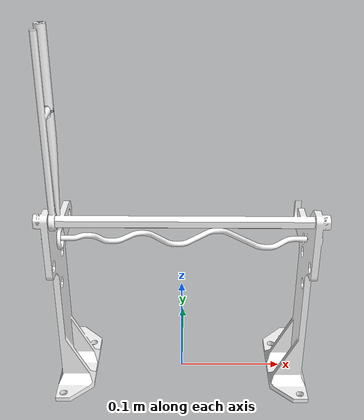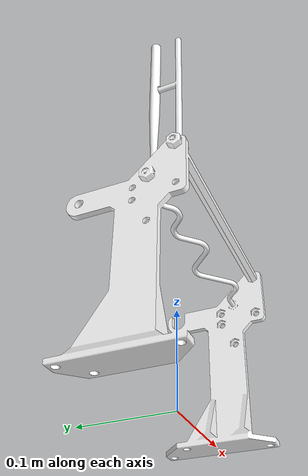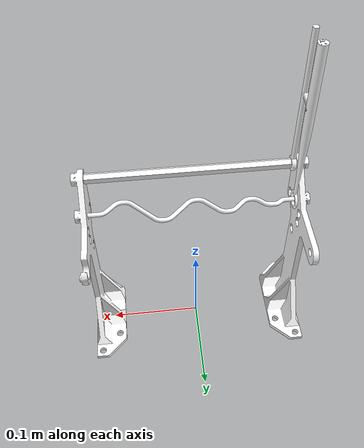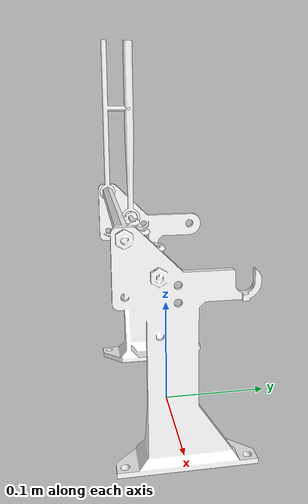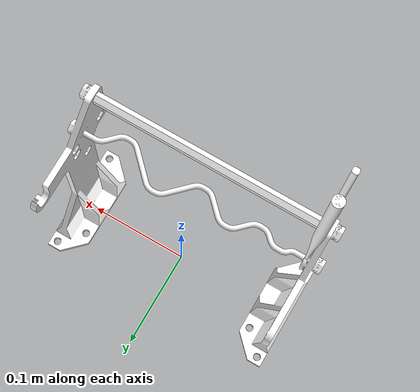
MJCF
<mujoco model="H2_Chopsticks">

  <asset>
    <mesh name="i12_horizontal_base" file="i12_horizontal_base.stl" scale="1 1 1"/>
    <mesh name="i12_holder1_collision" file="i12_holder1_collision.stl" scale="1 1 1"/>
    <mesh name="i12_holder2_collision" file="i12_holder2_collision.stl" scale="1 1 1"/>

    <mesh name="i12_traj_part_0" file="i12_traj/part_0.obj" scale="1 1 1"/>
    <mesh name="i12_traj_part_1" file="i12_traj/part_1.obj" scale="1 1 1"/>
    <mesh name="i12_traj_part_2" file="i12_traj/part_2.obj" scale="1 1 1"/>
    <mesh name="i12_traj_part_3" file="i12_traj/part_3.obj" scale="1 1 1"/>
    <mesh name="i12_traj_part_4" file="i12_traj/part_4.obj" scale="1 1 1"/>
    <mesh name="i12_traj_part_5" file="i12_traj/part_5.obj" scale="1 1 1"/>
    <mesh name="i12_traj_part_6" file="i12_traj/part_6.obj" scale="1 1 1"/>
    <mesh name="i12_traj_part_7" file="i12_traj/part_7.obj" scale="1 1 1"/>
    <mesh name="i12_traj_part_8" file="i12_traj/part_8.obj" scale="1 1 1"/>
    <mesh name="i12_traj_part_9" file="i12_traj/part_9.obj" scale="1 1 1"/>
    <mesh name="i12_traj_part_10" file="i12_traj/part_10.obj" scale="1 1 1"/>
    <mesh name="i12_traj_part_11" file="i12_traj/part_11.obj" scale="1 1 1"/>
    <mesh name="i12_traj_part_12" file="i12_traj/part_12.obj" scale="1 1 1"/>
    <mesh name="i12_traj_part_13" file="i12_traj/part_13.obj" scale="1 1 1"/>
    <mesh name="i12_traj_part_14" file="i12_traj/part_14.obj" scale="1 1 1"/>
    <mesh name="i12_traj_part_15" file="i12_traj/part_15.obj" scale="1 1 1"/>
    <mesh name="i12_traj_part_16" file="i12_traj/part_16.obj" scale="1 1 1"/>
    <mesh name="i12_traj_part_17" file="i12_traj/part_17.obj" scale="1 1 1"/>
    <mesh name="i12_traj_part_18" file="i12_traj/part_18.obj" scale="1 1 1"/>

    <mesh name="i12_stationary_chopstick_visual" file="i12_stationary_chopstick_visual.stl" scale="1 1 1"/>
    <mesh name="i12_stationary_chopstick_collision" file="i12_stationary_chopstick_collision.stl" scale="1 1 1"/>
    <mesh name="i12_dynamic_chopstick_visual" file="i12_dynamic_chopstick_visual.stl" scale="1 1 1"/>
    <mesh name="i12_dynamic_chopstick_collision" file="i12_dynamic_chopstick_collision.stl" scale="1 1 1"/>

    <mesh name="i12_ring_part_0" file="i12_ring/part_0.obj" scale="1 1 1"/>
    <mesh name="i12_ring_part_1" file="i12_ring/part_1.obj" scale="1 1 1"/>
    <mesh name="i12_ring_part_2" file="i12_ring/part_2.obj" scale="1 1 1"/>
    <mesh name="i12_ring_part_3" file="i12_ring/part_3.obj" scale="1 1 1"/>
    <mesh name="i12_ring_part_4" file="i12_ring/part_4.obj" scale="1 1 1"/>
    <mesh name="i12_ring_part_5" file="i12_ring/part_5.obj" scale="1 1 1"/>
    <mesh name="i12_ring_part_6" file="i12_ring/part_6.obj" scale="1 1 1"/>
    <mesh name="i12_ring_part_7" file="i12_ring/part_7.obj" scale="1 1 1"/>
    <mesh name="i12_ring_part_8" file="i12_ring/part_8.obj" scale="1 1 1"/>
    <mesh name="i12_ring_part_9" file="i12_ring/part_9.obj" scale="1 1 1"/>
    <mesh name="i12_ring_part_10" file="i12_ring/part_10.obj" scale="1 1 1"/>
    <mesh name="i12_ring_part_11" file="i12_ring/part_11.obj" scale="1 1 1"/>
    <mesh name="i12_ring_part_12" file="i12_ring/part_12.obj" scale="1 1 1"/>
    <mesh name="i12_ring_part_13" file="i12_ring/part_13.obj" scale="1 1 1"/>
    <mesh name="i12_ring_part_14" file="i12_ring/part_14.obj" scale="1 1 1"/>
    <mesh name="i12_ring_part_15" file="i12_ring/part_15.obj" scale="1 1 1"/>
    <mesh name="i12_ring_part_16" file="i12_ring/part_16.obj" scale="1 1 1"/>

    <material name="object_material" rgba="1 1 1 1" shininess="0.3"/>
  </asset>

  <default>
    <default class="visual">
      <geom contype="0" conaffinity="0" group="2"/>
    </default>
    <default class="collision">
      <geom group="3"/>
    </default>
  </default>

  <worldbody>
    <body name="i12_horizontal_base_body" pos="0 0 0">
      <geom name="i12_horizontal_base" type="mesh" mesh="i12_horizontal_base" material="object_material" mass="1" class="visual"/>
      <geom name="i12_holder1_collision" type="mesh" mesh="i12_holder1_collision" class="collision"/>
      <geom name="i12_holder2_collision" type="mesh" mesh="i12_holder2_collision" class="collision"/>

      <geom name="i12_traj_part_0" type="mesh" mesh="i12_traj_part_0" class="collision" solref="0.002 1" friction="1 0.1 0.1"/>
      <geom name="i12_traj_part_1" type="mesh" mesh="i12_traj_part_1" class="collision" solref="0.002 1" friction="1 0.1 0.1"/>
      <geom name="i12_traj_part_2" type="mesh" mesh="i12_traj_part_2" class="collision" solref="0.002 1" friction="1 0.1 0.1"/>
      <geom name="i12_traj_part_3" type="mesh" mesh="i12_traj_part_3" class="collision" solref="0.002 1" friction="1 0.1 0.1"/>
      <geom name="i12_traj_part_4" type="mesh" mesh="i12_traj_part_4" class="collision" solref="0.002 1" friction="1 0.1 0.1"/>
      <geom name="i12_traj_part_5" type="mesh" mesh="i12_traj_part_5" class="collision" solref="0.002 1" friction="1 0.1 0.1"/>
      <geom name="i12_traj_part_6" type="mesh" mesh="i12_traj_part_6" class="collision" solref="0.002 1" friction="1 0.1 0.1"/>
      <geom name="i12_traj_part_7" type="mesh" mesh="i12_traj_part_7" class="collision" solref="0.002 1" friction="1 0.1 0.1"/>
      <geom name="i12_traj_part_8" type="mesh" mesh="i12_traj_part_8" class="collision" solref="0.002 1" friction="1 0.1 0.1"/>
      <geom name="i12_traj_part_9" type="mesh" mesh="i12_traj_part_9" class="collision" solref="0.002 1" friction="1 0.1 0.1"/>
      <geom name="i12_traj_part_10" type="mesh" mesh="i12_traj_part_10" class="collision" solref="0.002 1" friction="1 0.1 0.1"/>
      <geom name="i12_traj_part_11" type="mesh" mesh="i12_traj_part_11" class="collision" solref="0.002 1" friction="1 0.1 0.1"/>
      <geom name="i12_traj_part_12" type="mesh" mesh="i12_traj_part_12" class="collision" solref="0.002 1" friction="1 0.1 0.1"/>
      <geom name="i12_traj_part_13" type="mesh" mesh="i12_traj_part_13" class="collision" solref="0.002 1" friction="1 0.1 0.1"/>
      <geom name="i12_traj_part_14" type="mesh" mesh="i12_traj_part_14" class="collision" solref="0.002 1" friction="1 0.1 0.1"/>
      <geom name="i12_traj_part_15" type="mesh" mesh="i12_traj_part_15" class="collision" solref="0.002 1" friction="1 0.1 0.1"/>
      <geom name="i12_traj_part_16" type="mesh" mesh="i12_traj_part_16" class="collision" solref="0.002 1" friction="1 0.1 0.1"/>
      <geom name="i12_traj_part_17" type="mesh" mesh="i12_traj_part_17" class="collision" solref="0.002 1" friction="1 0.1 0.1"/>
      <geom name="i12_traj_part_18" type="mesh" mesh="i12_traj_part_18" class="collision" solref="0.002 1" friction="1 0.1 0.1"/>
    </body>

    <body name="stationary_chopstick_body" pos="0 0 0">
      <joint name="stationary_chopstick_slide" type="slide" axis="1 0 0" range="0 0.2195" damping="0.05"/>
      <geom name="i12_stationary_chopstick_visual" type="mesh" mesh="i12_stationary_chopstick_visual" material="object_material" class="visual"/>
      <geom name="i12_stationary_chopstick_collision" type="mesh" mesh="i12_stationary_chopstick_collision" density="248" class="collision"/>
      <body name="dynamic_chopstick" pos="0 0 0">
        <joint name="dynamic_chopstick_hinge" type="hinge" pos="-0.10975 -0.0228 0.283" axis="1 0 0" range="-0.4363 0.4363" damping="0.05"/>
        <geom name="i12_dynamic_chopstick_visual" type="mesh" mesh="i12_dynamic_chopstick_visual" material="object_material" class="visual"/>
        <geom name="i12_dynamic_chopstick_collision" type="mesh" mesh="i12_dynamic_chopstick_collision" density="248" class="collision"/>

        <geom name="i12_ring_part_0" type="mesh" mesh="i12_ring_part_0" density="248" class="collision" friction="1 0.1 0.1"/>
        <geom name="i12_ring_part_1" type="mesh" mesh="i12_ring_part_1" density="248" class="collision" friction="1 0.1 0.1"/>
        <geom name="i12_ring_part_2" type="mesh" mesh="i12_ring_part_2" density="248" class="collision" friction="1 0.1 0.1"/>
        <geom name="i12_ring_part_3" type="mesh" mesh="i12_ring_part_3" density="248" class="collision" friction="1 0.1 0.1"/>
        <geom name="i12_ring_part_4" type="mesh" mesh="i12_ring_part_4" density="248" class="collision" friction="1 0.1 0.1"/>
        <geom name="i12_ring_part_5" type="mesh" mesh="i12_ring_part_5" density="248" class="collision" friction="1 0.1 0.1"/>
        <geom name="i12_ring_part_6" type="mesh" mesh="i12_ring_part_6" density="248" class="collision" friction="1 0.1 0.1"/>
        <geom name="i12_ring_part_7" type="mesh" mesh="i12_ring_part_7" density="248" class="collision" friction="1 0.1 0.1"/>
        <geom name="i12_ring_part_8" type="mesh" mesh="i12_ring_part_8" density="248" class="collision" friction="1 0.1 0.1"/>
        <geom name="i12_ring_part_9" type="mesh" mesh="i12_ring_part_9" density="248" class="collision" friction="1 0.1 0.1"/>
        <geom name="i12_ring_part_10" type="mesh" mesh="i12_ring_part_10" density="248" class="collision" friction="1 0.1 0.1"/>
        <geom name="i12_ring_part_11" type="mesh" mesh="i12_ring_part_11" density="248" class="collision" friction="1 0.1 0.1"/>
        <geom name="i12_ring_part_12" type="mesh" mesh="i12_ring_part_12" density="248" class="collision" friction="1 0.1 0.1"/>
        <geom name="i12_ring_part_13" type="mesh" mesh="i12_ring_part_13" density="248" class="collision" friction="1 0.1 0.1"/>
        <geom name="i12_ring_part_14" type="mesh" mesh="i12_ring_part_14" density="248" class="collision" friction="1 0.1 0.1"/>
        <geom name="i12_ring_part_15" type="mesh" mesh="i12_ring_part_15" density="248" class="collision" friction="1 0.1 0.1"/>
        <geom name="i12_ring_part_16" type="mesh" mesh="i12_ring_part_16" density="248" class="collision" friction="1 0.1 0.1"/>
      </body>
    </body>

  </worldbody>
</mujoco>
